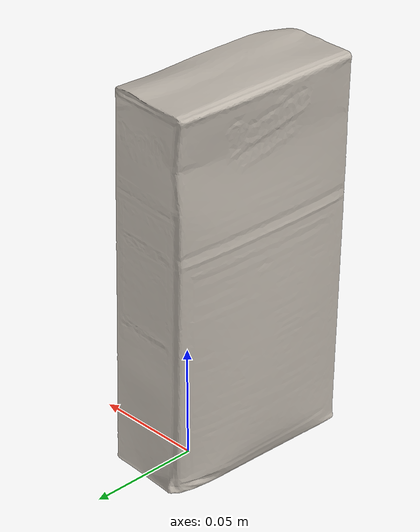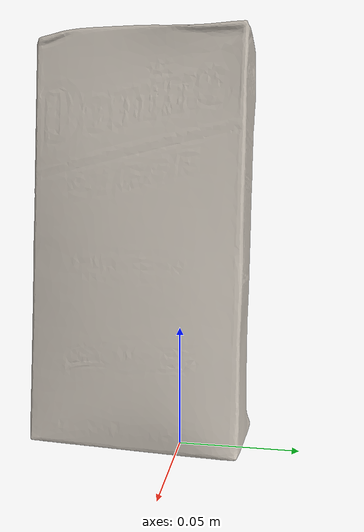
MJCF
<mujoco model="sugar_box">
  <compiler angle="radian" meshdir="assets" texturedir="assets"/>
    <default>
        <default class="ycb_col">
            <geom contype="1" conaffinity="1" group="3" rgba=".4 .5 .6 1"/>
        </default>
        <default class="ycb_viz">
            <geom contype="0" conaffinity="0" type="mesh" mass="0"/>
        </default>
    </default>
  <asset>
    <texture type="2d" name="sugar_box_tex" file="texture_map.png"/>
    <material name="sugar_box_mat" texture="sugar_box_tex" specular="0.5" shininess="0.5"/>
    <mesh file="textured.obj" name="sugar_box"/>
    <mesh file="textured_collision_0.obj" name="sugar_box_collision_0"/>
  </asset>
  <worldbody>

    <geom class="ycb_viz" material="sugar_box_mat" mesh="sugar_box" />
    <geom class="ycb_col" mesh="sugar_box_collision_0" conaffinity="1" condim="4" friction="0.1 0.1 0.1" mass="0.514" rgba="1 1 1 1" solimp="0.99 0.99 0.01" solref=".001 0.1" type="mesh" group="3"/>

  </worldbody>
</mujoco>
